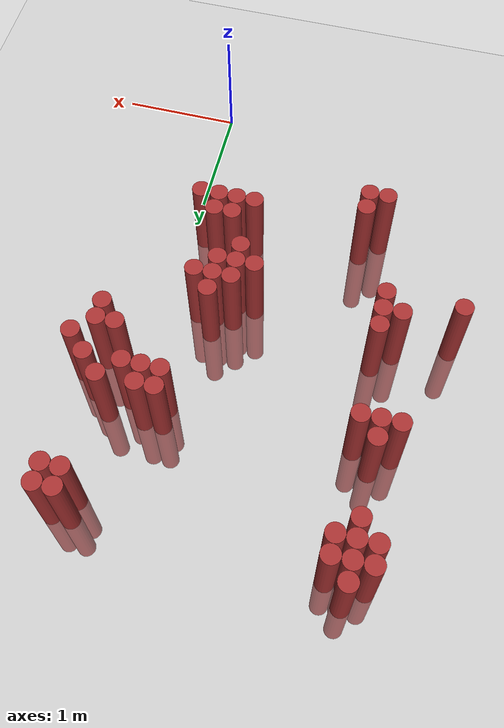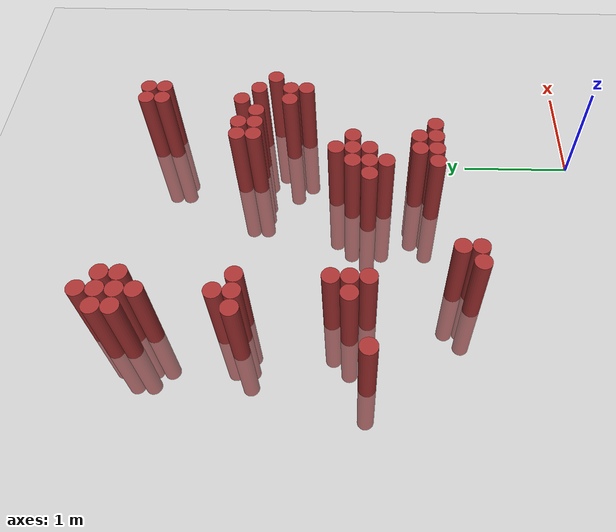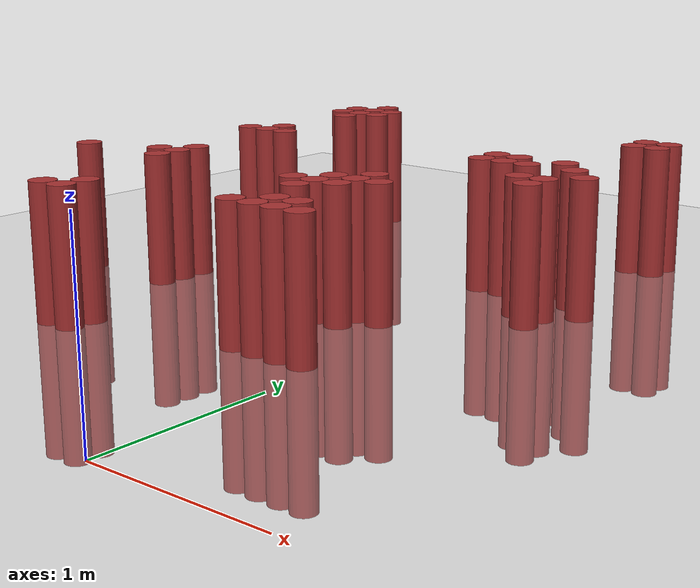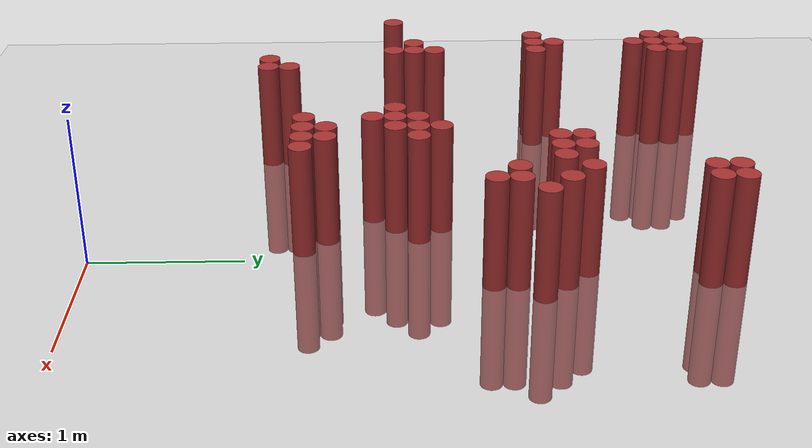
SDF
<sdf version="1.6">
 <world name="default">
  <model name="ground_plane">
   <static>1</static>
   <link name="link">
    <collision name="collision">
     <geometry><plane><normal>0 0 1</normal><size>100 100</size></plane></geometry>
     <surface><friction><ode><mu>100</mu><mu2>50</mu2></ode></friction></surface>
    </collision>
    <visual name="visual">
     <cast_shadows>0</cast_shadows>
     <geometry><plane><normal>0 0 1</normal><size>100 100</size></plane></geometry>
     <material>
      <script><uri>file://media/materials/scripts/gazebo.material</uri><name>Gazebo/Grey</name></script>
     </material>
    </visual>
   </link>
  </model>
  <model name="unit_cylinder_312">
   <static>1</static>
   <pose>-2.375000 1.975000 0.000000 0.000000 0.000000 0.000000</pose>
   <link name="link">
    <inertial>
     <mass>1</mass>
     <inertia><ixx>0.145833</ixx><ixy>0</ixy><ixz>0</ixz><iyy>0.145833</iyy><iyz>0</iyz><izz>0.125</izz></inertia>
    </inertial>
    <collision name="collision">
     <geometry><cylinder><radius>0.075000</radius><length>1.5</length></cylinder></geometry>
    </collision>
    <visual name="visual">
     <geometry><cylinder><radius>0.075000</radius><length>1.5</length></cylinder></geometry>
     <material>
      <ambient>0.648000 0.192000 0.192000 1</ambient>
      <diffuse>0.648000 0.192000 0.192000 1</diffuse>
     </material>
     <material>
      <script><name>Gazebo/Grey</name><uri>file://media/materials/scripts/gazebo.material</uri></script>
     </material>
    </visual>
   </link>
  </model>
  <model name="unit_cylinder_317">
   <static>1</static>
   <pose>-2.075000 3.025000 0.000000 0.000000 0.000000 0.000000</pose>
   <link name="link">
    <inertial>
     <mass>1</mass>
     <inertia><ixx>0.145833</ixx><ixy>0</ixy><ixz>0</ixz><iyy>0.145833</iyy><iyz>0</iyz><izz>0.125</izz></inertia>
    </inertial>
    <collision name="collision">
     <geometry><cylinder><radius>0.075000</radius><length>1.5</length></cylinder></geometry>
    </collision>
    <visual name="visual">
     <geometry><cylinder><radius>0.075000</radius><length>1.5</length></cylinder></geometry>
     <material>
      <ambient>0.648000 0.192000 0.192000 1</ambient>
      <diffuse>0.648000 0.192000 0.192000 1</diffuse>
     </material>
     <material>
      <script><name>Gazebo/Grey</name><uri>file://media/materials/scripts/gazebo.material</uri></script>
     </material>
    </visual>
   </link>
  </model>
  <model name="unit_cylinder_318">
   <static>1</static>
   <pose>-2.075000 3.925000 0.000000 0.000000 0.000000 0.000000</pose>
   <link name="link">
    <inertial>
     <mass>1</mass>
     <inertia><ixx>0.145833</ixx><ixy>0</ixy><ixz>0</ixz><iyy>0.145833</iyy><iyz>0</iyz><izz>0.125</izz></inertia>
    </inertial>
    <collision name="collision">
     <geometry><cylinder><radius>0.075000</radius><length>1.5</length></cylinder></geometry>
    </collision>
    <visual name="visual">
     <geometry><cylinder><radius>0.075000</radius><length>1.5</length></cylinder></geometry>
     <material>
      <ambient>0.648000 0.192000 0.192000 1</ambient>
      <diffuse>0.648000 0.192000 0.192000 1</diffuse>
     </material>
     <material>
      <script><name>Gazebo/Grey</name><uri>file://media/materials/scripts/gazebo.material</uri></script>
     </material>
    </visual>
   </link>
  </model>
  <model name="unit_cylinder_319">
   <static>1</static>
   <pose>-2.075000 4.075000 0.000000 0.000000 0.000000 0.000000</pose>
   <link name="link">
    <inertial>
     <mass>1</mass>
     <inertia><ixx>0.145833</ixx><ixy>0</ixy><ixz>0</ixz><iyy>0.145833</iyy><iyz>0</iyz><izz>0.125</izz></inertia>
    </inertial>
    <collision name="collision">
     <geometry><cylinder><radius>0.075000</radius><length>1.5</length></cylinder></geometry>
    </collision>
    <visual name="visual">
     <geometry><cylinder><radius>0.075000</radius><length>1.5</length></cylinder></geometry>
     <material>
      <ambient>0.648000 0.192000 0.192000 1</ambient>
      <diffuse>0.648000 0.192000 0.192000 1</diffuse>
     </material>
     <material>
      <script><name>Gazebo/Grey</name><uri>file://media/materials/scripts/gazebo.material</uri></script>
     </material>
    </visual>
   </link>
  </model>
  <model name="unit_cylinder_321">
   <static>1</static>
   <pose>-1.925000 2.125000 0.000000 0.000000 0.000000 0.000000</pose>
   <link name="link">
    <inertial>
     <mass>1</mass>
     <inertia><ixx>0.145833</ixx><ixy>0</ixy><ixz>0</ixz><iyy>0.145833</iyy><iyz>0</iyz><izz>0.125</izz></inertia>
    </inertial>
    <collision name="collision">
     <geometry><cylinder><radius>0.075000</radius><length>1.5</length></cylinder></geometry>
    </collision>
    <visual name="visual">
     <geometry><cylinder><radius>0.075000</radius><length>1.5</length></cylinder></geometry>
     <material>
      <ambient>0.648000 0.192000 0.192000 1</ambient>
      <diffuse>0.648000 0.192000 0.192000 1</diffuse>
     </material>
     <material>
      <script><name>Gazebo/Grey</name><uri>file://media/materials/scripts/gazebo.material</uri></script>
     </material>
    </visual>
   </link>
  </model>
  <model name="unit_cylinder_322">
   <static>1</static>
   <pose>-1.925000 3.025000 0.000000 0.000000 0.000000 0.000000</pose>
   <link name="link">
    <inertial>
     <mass>1</mass>
     <inertia><ixx>0.145833</ixx><ixy>0</ixy><ixz>0</ixz><iyy>0.145833</iyy><iyz>0</iyz><izz>0.125</izz></inertia>
    </inertial>
    <collision name="collision">
     <geometry><cylinder><radius>0.075000</radius><length>1.5</length></cylinder></geometry>
    </collision>
    <visual name="visual">
     <geometry><cylinder><radius>0.075000</radius><length>1.5</length></cylinder></geometry>
     <material>
      <ambient>0.648000 0.192000 0.192000 1</ambient>
      <diffuse>0.648000 0.192000 0.192000 1</diffuse>
     </material>
     <material>
      <script><name>Gazebo/Grey</name><uri>file://media/materials/scripts/gazebo.material</uri></script>
     </material>
    </visual>
   </link>
  </model>
  <model name="unit_cylinder_323">
   <static>1</static>
   <pose>-1.925000 3.175000 0.000000 0.000000 0.000000 0.000000</pose>
   <link name="link">
    <inertial>
     <mass>1</mass>
     <inertia><ixx>0.145833</ixx><ixy>0</ixy><ixz>0</ixz><iyy>0.145833</iyy><iyz>0</iyz><izz>0.125</izz></inertia>
    </inertial>
    <collision name="collision">
     <geometry><cylinder><radius>0.075000</radius><length>1.5</length></cylinder></geometry>
    </collision>
    <visual name="visual">
     <geometry><cylinder><radius>0.075000</radius><length>1.5</length></cylinder></geometry>
     <material>
      <ambient>0.648000 0.192000 0.192000 1</ambient>
      <diffuse>0.648000 0.192000 0.192000 1</diffuse>
     </material>
     <material>
      <script><name>Gazebo/Grey</name><uri>file://media/materials/scripts/gazebo.material</uri></script>
     </material>
    </visual>
   </link>
  </model>
  <model name="unit_cylinder_324">
   <static>1</static>
   <pose>-1.925000 3.775000 0.000000 0.000000 0.000000 0.000000</pose>
   <link name="link">
    <inertial>
     <mass>1</mass>
     <inertia><ixx>0.145833</ixx><ixy>0</ixy><ixz>0</ixz><iyy>0.145833</iyy><iyz>0</iyz><izz>0.125</izz></inertia>
    </inertial>
    <collision name="collision">
     <geometry><cylinder><radius>0.075000</radius><length>1.5</length></cylinder></geometry>
    </collision>
    <visual name="visual">
     <geometry><cylinder><radius>0.075000</radius><length>1.5</length></cylinder></geometry>
     <material>
      <ambient>0.648000 0.192000 0.192000 1</ambient>
      <diffuse>0.648000 0.192000 0.192000 1</diffuse>
     </material>
     <material>
      <script><name>Gazebo/Grey</name><uri>file://media/materials/scripts/gazebo.material</uri></script>
     </material>
    </visual>
   </link>
  </model>
  <model name="unit_cylinder_325">
   <static>1</static>
   <pose>-1.925000 3.925000 0.000000 0.000000 0.000000 0.000000</pose>
   <link name="link">
    <inertial>
     <mass>1</mass>
     <inertia><ixx>0.145833</ixx><ixy>0</ixy><ixz>0</ixz><iyy>0.145833</iyy><iyz>0</iyz><izz>0.125</izz></inertia>
    </inertial>
    <collision name="collision">
     <geometry><cylinder><radius>0.075000</radius><length>1.5</length></cylinder></geometry>
    </collision>
    <visual name="visual">
     <geometry><cylinder><radius>0.075000</radius><length>1.5</length></cylinder></geometry>
     <material>
      <ambient>0.648000 0.192000 0.192000 1</ambient>
      <diffuse>0.648000 0.192000 0.192000 1</diffuse>
     </material>
     <material>
      <script><name>Gazebo/Grey</name><uri>file://media/materials/scripts/gazebo.material</uri></script>
     </material>
    </visual>
   </link>
  </model>
  <model name="unit_cylinder_326">
   <static>1</static>
   <pose>-1.925000 4.075000 0.000000 0.000000 0.000000 0.000000</pose>
   <link name="link">
    <inertial>
     <mass>1</mass>
     <inertia><ixx>0.145833</ixx><ixy>0</ixy><ixz>0</ixz><iyy>0.145833</iyy><iyz>0</iyz><izz>0.125</izz></inertia>
    </inertial>
    <collision name="collision">
     <geometry><cylinder><radius>0.075000</radius><length>1.5</length></cylinder></geometry>
    </collision>
    <visual name="visual">
     <geometry><cylinder><radius>0.075000</radius><length>1.5</length></cylinder></geometry>
     <material>
      <ambient>0.648000 0.192000 0.192000 1</ambient>
      <diffuse>0.648000 0.192000 0.192000 1</diffuse>
     </material>
     <material>
      <script><name>Gazebo/Grey</name><uri>file://media/materials/scripts/gazebo.material</uri></script>
     </material>
    </visual>
   </link>
  </model>
  <model name="unit_cylinder_327">
   <static>1</static>
   <pose>-1.925000 4.225000 0.000000 0.000000 0.000000 0.000000</pose>
   <link name="link">
    <inertial>
     <mass>1</mass>
     <inertia><ixx>0.145833</ixx><ixy>0</ixy><ixz>0</ixz><iyy>0.145833</iyy><iyz>0</iyz><izz>0.125</izz></inertia>
    </inertial>
    <collision name="collision">
     <geometry><cylinder><radius>0.075000</radius><length>1.5</length></cylinder></geometry>
    </collision>
    <visual name="visual">
     <geometry><cylinder><radius>0.075000</radius><length>1.5</length></cylinder></geometry>
     <material>
      <ambient>0.648000 0.192000 0.192000 1</ambient>
      <diffuse>0.648000 0.192000 0.192000 1</diffuse>
     </material>
     <material>
      <script><name>Gazebo/Grey</name><uri>file://media/materials/scripts/gazebo.material</uri></script>
     </material>
    </visual>
   </link>
  </model>
  <model name="unit_cylinder_330">
   <static>1</static>
   <pose>-1.775000 1.975000 0.000000 0.000000 0.000000 0.000000</pose>
   <link name="link">
    <inertial>
     <mass>1</mass>
     <inertia><ixx>0.145833</ixx><ixy>0</ixy><ixz>0</ixz><iyy>0.145833</iyy><iyz>0</iyz><izz>0.125</izz></inertia>
    </inertial>
    <collision name="collision">
     <geometry><cylinder><radius>0.075000</radius><length>1.5</length></cylinder></geometry>
    </collision>
    <visual name="visual">
     <geometry><cylinder><radius>0.075000</radius><length>1.5</length></cylinder></geometry>
     <material>
      <ambient>0.648000 0.192000 0.192000 1</ambient>
      <diffuse>0.648000 0.192000 0.192000 1</diffuse>
     </material>
     <material>
      <script><name>Gazebo/Grey</name><uri>file://media/materials/scripts/gazebo.material</uri></script>
     </material>
    </visual>
   </link>
  </model>
  <model name="unit_cylinder_331">
   <static>1</static>
   <pose>-1.775000 2.125000 0.000000 0.000000 0.000000 0.000000</pose>
   <link name="link">
    <inertial>
     <mass>1</mass>
     <inertia><ixx>0.145833</ixx><ixy>0</ixy><ixz>0</ixz><iyy>0.145833</iyy><iyz>0</iyz><izz>0.125</izz></inertia>
    </inertial>
    <collision name="collision">
     <geometry><cylinder><radius>0.075000</radius><length>1.5</length></cylinder></geometry>
    </collision>
    <visual name="visual">
     <geometry><cylinder><radius>0.075000</radius><length>1.5</length></cylinder></geometry>
     <material>
      <ambient>0.648000 0.192000 0.192000 1</ambient>
      <diffuse>0.648000 0.192000 0.192000 1</diffuse>
     </material>
     <material>
      <script><name>Gazebo/Grey</name><uri>file://media/materials/scripts/gazebo.material</uri></script>
     </material>
    </visual>
   </link>
  </model>
  <model name="unit_cylinder_332">
   <static>1</static>
   <pose>-1.775000 2.275000 0.000000 0.000000 0.000000 0.000000</pose>
   <link name="link">
    <inertial>
     <mass>1</mass>
     <inertia><ixx>0.145833</ixx><ixy>0</ixy><ixz>0</ixz><iyy>0.145833</iyy><iyz>0</iyz><izz>0.125</izz></inertia>
    </inertial>
    <collision name="collision">
     <geometry><cylinder><radius>0.075000</radius><length>1.5</length></cylinder></geometry>
    </collision>
    <visual name="visual">
     <geometry><cylinder><radius>0.075000</radius><length>1.5</length></cylinder></geometry>
     <material>
      <ambient>0.648000 0.192000 0.192000 1</ambient>
      <diffuse>0.648000 0.192000 0.192000 1</diffuse>
     </material>
     <material>
      <script><name>Gazebo/Grey</name><uri>file://media/materials/scripts/gazebo.material</uri></script>
     </material>
    </visual>
   </link>
  </model>
  <model name="unit_cylinder_333">
   <static>1</static>
   <pose>-1.775000 3.025000 0.000000 0.000000 0.000000 0.000000</pose>
   <link name="link">
    <inertial>
     <mass>1</mass>
     <inertia><ixx>0.145833</ixx><ixy>0</ixy><ixz>0</ixz><iyy>0.145833</iyy><iyz>0</iyz><izz>0.125</izz></inertia>
    </inertial>
    <collision name="collision">
     <geometry><cylinder><radius>0.075000</radius><length>1.5</length></cylinder></geometry>
    </collision>
    <visual name="visual">
     <geometry><cylinder><radius>0.075000</radius><length>1.5</length></cylinder></geometry>
     <material>
      <ambient>0.648000 0.192000 0.192000 1</ambient>
      <diffuse>0.648000 0.192000 0.192000 1</diffuse>
     </material>
     <material>
      <script><name>Gazebo/Grey</name><uri>file://media/materials/scripts/gazebo.material</uri></script>
     </material>
    </visual>
   </link>
  </model>
  <model name="unit_cylinder_334">
   <static>1</static>
   <pose>-1.775000 3.925000 0.000000 0.000000 0.000000 0.000000</pose>
   <link name="link">
    <inertial>
     <mass>1</mass>
     <inertia><ixx>0.145833</ixx><ixy>0</ixy><ixz>0</ixz><iyy>0.145833</iyy><iyz>0</iyz><izz>0.125</izz></inertia>
    </inertial>
    <collision name="collision">
     <geometry><cylinder><radius>0.075000</radius><length>1.5</length></cylinder></geometry>
    </collision>
    <visual name="visual">
     <geometry><cylinder><radius>0.075000</radius><length>1.5</length></cylinder></geometry>
     <material>
      <ambient>0.648000 0.192000 0.192000 1</ambient>
      <diffuse>0.648000 0.192000 0.192000 1</diffuse>
     </material>
     <material>
      <script><name>Gazebo/Grey</name><uri>file://media/materials/scripts/gazebo.material</uri></script>
     </material>
    </visual>
   </link>
  </model>
  <model name="unit_cylinder_335">
   <static>1</static>
   <pose>-1.775000 4.075000 0.000000 0.000000 0.000000 0.000000</pose>
   <link name="link">
    <inertial>
     <mass>1</mass>
     <inertia><ixx>0.145833</ixx><ixy>0</ixy><ixz>0</ixz><iyy>0.145833</iyy><iyz>0</iyz><izz>0.125</izz></inertia>
    </inertial>
    <collision name="collision">
     <geometry><cylinder><radius>0.075000</radius><length>1.5</length></cylinder></geometry>
    </collision>
    <visual name="visual">
     <geometry><cylinder><radius>0.075000</radius><length>1.5</length></cylinder></geometry>
     <material>
      <ambient>0.648000 0.192000 0.192000 1</ambient>
      <diffuse>0.648000 0.192000 0.192000 1</diffuse>
     </material>
     <material>
      <script><name>Gazebo/Grey</name><uri>file://media/materials/scripts/gazebo.material</uri></script>
     </material>
    </visual>
   </link>
  </model>
  <model name="unit_cylinder_338">
   <static>1</static>
   <pose>-1.625000 1.075000 0.000000 0.000000 0.000000 0.000000</pose>
   <link name="link">
    <inertial>
     <mass>1</mass>
     <inertia><ixx>0.145833</ixx><ixy>0</ixy><ixz>0</ixz><iyy>0.145833</iyy><iyz>0</iyz><izz>0.125</izz></inertia>
    </inertial>
    <collision name="collision">
     <geometry><cylinder><radius>0.075000</radius><length>1.5</length></cylinder></geometry>
    </collision>
    <visual name="visual">
     <geometry><cylinder><radius>0.075000</radius><length>1.5</length></cylinder></geometry>
     <material>
      <ambient>0.648000 0.192000 0.192000 1</ambient>
      <diffuse>0.648000 0.192000 0.192000 1</diffuse>
     </material>
     <material>
      <script><name>Gazebo/Grey</name><uri>file://media/materials/scripts/gazebo.material</uri></script>
     </material>
    </visual>
   </link>
  </model>
  <model name="unit_cylinder_340">
   <static>1</static>
   <pose>-1.475000 1.075000 0.000000 0.000000 0.000000 0.000000</pose>
   <link name="link">
    <inertial>
     <mass>1</mass>
     <inertia><ixx>0.145833</ixx><ixy>0</ixy><ixz>0</ixz><iyy>0.145833</iyy><iyz>0</iyz><izz>0.125</izz></inertia>
    </inertial>
    <collision name="collision">
     <geometry><cylinder><radius>0.075000</radius><length>1.5</length></cylinder></geometry>
    </collision>
    <visual name="visual">
     <geometry><cylinder><radius>0.075000</radius><length>1.5</length></cylinder></geometry>
     <material>
      <ambient>0.648000 0.192000 0.192000 1</ambient>
      <diffuse>0.648000 0.192000 0.192000 1</diffuse>
     </material>
     <material>
      <script><name>Gazebo/Grey</name><uri>file://media/materials/scripts/gazebo.material</uri></script>
     </material>
    </visual>
   </link>
  </model>
  <model name="unit_cylinder_341">
   <static>1</static>
   <pose>-1.475000 1.225000 0.000000 0.000000 0.000000 0.000000</pose>
   <link name="link">
    <inertial>
     <mass>1</mass>
     <inertia><ixx>0.145833</ixx><ixy>0</ixy><ixz>0</ixz><iyy>0.145833</iyy><iyz>0</iyz><izz>0.125</izz></inertia>
    </inertial>
    <collision name="collision">
     <geometry><cylinder><radius>0.075000</radius><length>1.5</length></cylinder></geometry>
    </collision>
    <visual name="visual">
     <geometry><cylinder><radius>0.075000</radius><length>1.5</length></cylinder></geometry>
     <material>
      <ambient>0.648000 0.192000 0.192000 1</ambient>
      <diffuse>0.648000 0.192000 0.192000 1</diffuse>
     </material>
     <material>
      <script><name>Gazebo/Grey</name><uri>file://media/materials/scripts/gazebo.material</uri></script>
     </material>
    </visual>
   </link>
  </model>
  <model name="unit_cylinder_352">
   <static>1</static>
   <pose>-0.725000 1.975000 0.000000 0.000000 0.000000 0.000000</pose>
   <link name="link">
    <inertial>
     <mass>1</mass>
     <inertia><ixx>0.145833</ixx><ixy>0</ixy><ixz>0</ixz><iyy>0.145833</iyy><iyz>0</iyz><izz>0.125</izz></inertia>
    </inertial>
    <collision name="collision">
     <geometry><cylinder><radius>0.075000</radius><length>1.5</length></cylinder></geometry>
    </collision>
    <visual name="visual">
     <geometry><cylinder><radius>0.075000</radius><length>1.5</length></cylinder></geometry>
     <material>
      <ambient>0.648000 0.192000 0.192000 1</ambient>
      <diffuse>0.648000 0.192000 0.192000 1</diffuse>
     </material>
     <material>
      <script><name>Gazebo/Grey</name><uri>file://media/materials/scripts/gazebo.material</uri></script>
     </material>
    </visual>
   </link>
  </model>
  <model name="unit_cylinder_354">
   <static>1</static>
   <pose>-0.575000 1.375000 0.000000 0.000000 0.000000 0.000000</pose>
   <link name="link">
    <inertial>
     <mass>1</mass>
     <inertia><ixx>0.145833</ixx><ixy>0</ixy><ixz>0</ixz><iyy>0.145833</iyy><iyz>0</iyz><izz>0.125</izz></inertia>
    </inertial>
    <collision name="collision">
     <geometry><cylinder><radius>0.075000</radius><length>1.5</length></cylinder></geometry>
    </collision>
    <visual name="visual">
     <geometry><cylinder><radius>0.075000</radius><length>1.5</length></cylinder></geometry>
     <material>
      <ambient>0.648000 0.192000 0.192000 1</ambient>
      <diffuse>0.648000 0.192000 0.192000 1</diffuse>
     </material>
     <material>
      <script><name>Gazebo/Grey</name><uri>file://media/materials/scripts/gazebo.material</uri></script>
     </material>
    </visual>
   </link>
  </model>
  <model name="unit_cylinder_355">
   <static>1</static>
   <pose>-0.575000 1.825000 0.000000 0.000000 0.000000 0.000000</pose>
   <link name="link">
    <inertial>
     <mass>1</mass>
     <inertia><ixx>0.145833</ixx><ixy>0</ixy><ixz>0</ixz><iyy>0.145833</iyy><iyz>0</iyz><izz>0.125</izz></inertia>
    </inertial>
    <collision name="collision">
     <geometry><cylinder><radius>0.075000</radius><length>1.5</length></cylinder></geometry>
    </collision>
    <visual name="visual">
     <geometry><cylinder><radius>0.075000</radius><length>1.5</length></cylinder></geometry>
     <material>
      <ambient>0.648000 0.192000 0.192000 1</ambient>
      <diffuse>0.648000 0.192000 0.192000 1</diffuse>
     </material>
     <material>
      <script><name>Gazebo/Grey</name><uri>file://media/materials/scripts/gazebo.material</uri></script>
     </material>
    </visual>
   </link>
  </model>
  <model name="unit_cylinder_356">
   <static>1</static>
   <pose>-0.575000 1.975000 0.000000 0.000000 0.000000 0.000000</pose>
   <link name="link">
    <inertial>
     <mass>1</mass>
     <inertia><ixx>0.145833</ixx><ixy>0</ixy><ixz>0</ixz><iyy>0.145833</iyy><iyz>0</iyz><izz>0.125</izz></inertia>
    </inertial>
    <collision name="collision">
     <geometry><cylinder><radius>0.075000</radius><length>1.5</length></cylinder></geometry>
    </collision>
    <visual name="visual">
     <geometry><cylinder><radius>0.075000</radius><length>1.5</length></cylinder></geometry>
     <material>
      <ambient>0.648000 0.192000 0.192000 1</ambient>
      <diffuse>0.648000 0.192000 0.192000 1</diffuse>
     </material>
     <material>
      <script><name>Gazebo/Grey</name><uri>file://media/materials/scripts/gazebo.material</uri></script>
     </material>
    </visual>
   </link>
  </model>
  <model name="unit_cylinder_357">
   <static>1</static>
   <pose>-0.575000 2.125000 0.000000 0.000000 0.000000 0.000000</pose>
   <link name="link">
    <inertial>
     <mass>1</mass>
     <inertia><ixx>0.145833</ixx><ixy>0</ixy><ixz>0</ixz><iyy>0.145833</iyy><iyz>0</iyz><izz>0.125</izz></inertia>
    </inertial>
    <collision name="collision">
     <geometry><cylinder><radius>0.075000</radius><length>1.5</length></cylinder></geometry>
    </collision>
    <visual name="visual">
     <geometry><cylinder><radius>0.075000</radius><length>1.5</length></cylinder></geometry>
     <material>
      <ambient>0.648000 0.192000 0.192000 1</ambient>
      <diffuse>0.648000 0.192000 0.192000 1</diffuse>
     </material>
     <material>
      <script><name>Gazebo/Grey</name><uri>file://media/materials/scripts/gazebo.material</uri></script>
     </material>
    </visual>
   </link>
  </model>
  <model name="unit_cylinder_358">
   <static>1</static>
   <pose>-0.425000 1.375000 0.000000 0.000000 0.000000 0.000000</pose>
   <link name="link">
    <inertial>
     <mass>1</mass>
     <inertia><ixx>0.145833</ixx><ixy>0</ixy><ixz>0</ixz><iyy>0.145833</iyy><iyz>0</iyz><izz>0.125</izz></inertia>
    </inertial>
    <collision name="collision">
     <geometry><cylinder><radius>0.075000</radius><length>1.5</length></cylinder></geometry>
    </collision>
    <visual name="visual">
     <geometry><cylinder><radius>0.075000</radius><length>1.5</length></cylinder></geometry>
     <material>
      <ambient>0.648000 0.192000 0.192000 1</ambient>
      <diffuse>0.648000 0.192000 0.192000 1</diffuse>
     </material>
     <material>
      <script><name>Gazebo/Grey</name><uri>file://media/materials/scripts/gazebo.material</uri></script>
     </material>
    </visual>
   </link>
  </model>
  <model name="unit_cylinder_359">
   <static>1</static>
   <pose>-0.425000 1.525000 0.000000 0.000000 0.000000 0.000000</pose>
   <link name="link">
    <inertial>
     <mass>1</mass>
     <inertia><ixx>0.145833</ixx><ixy>0</ixy><ixz>0</ixz><iyy>0.145833</iyy><iyz>0</iyz><izz>0.125</izz></inertia>
    </inertial>
    <collision name="collision">
     <geometry><cylinder><radius>0.075000</radius><length>1.5</length></cylinder></geometry>
    </collision>
    <visual name="visual">
     <geometry><cylinder><radius>0.075000</radius><length>1.5</length></cylinder></geometry>
     <material>
      <ambient>0.648000 0.192000 0.192000 1</ambient>
      <diffuse>0.648000 0.192000 0.192000 1</diffuse>
     </material>
     <material>
      <script><name>Gazebo/Grey</name><uri>file://media/materials/scripts/gazebo.material</uri></script>
     </material>
    </visual>
   </link>
  </model>
  <model name="unit_cylinder_360">
   <static>1</static>
   <pose>-0.425000 1.975000 0.000000 0.000000 0.000000 0.000000</pose>
   <link name="link">
    <inertial>
     <mass>1</mass>
     <inertia><ixx>0.145833</ixx><ixy>0</ixy><ixz>0</ixz><iyy>0.145833</iyy><iyz>0</iyz><izz>0.125</izz></inertia>
    </inertial>
    <collision name="collision">
     <geometry><cylinder><radius>0.075000</radius><length>1.5</length></cylinder></geometry>
    </collision>
    <visual name="visual">
     <geometry><cylinder><radius>0.075000</radius><length>1.5</length></cylinder></geometry>
     <material>
      <ambient>0.648000 0.192000 0.192000 1</ambient>
      <diffuse>0.648000 0.192000 0.192000 1</diffuse>
     </material>
     <material>
      <script><name>Gazebo/Grey</name><uri>file://media/materials/scripts/gazebo.material</uri></script>
     </material>
    </visual>
   </link>
  </model>
  <model name="unit_cylinder_361">
   <static>1</static>
   <pose>-0.425000 2.125000 0.000000 0.000000 0.000000 0.000000</pose>
   <link name="link">
    <inertial>
     <mass>1</mass>
     <inertia><ixx>0.145833</ixx><ixy>0</ixy><ixz>0</ixz><iyy>0.145833</iyy><iyz>0</iyz><izz>0.125</izz></inertia>
    </inertial>
    <collision name="collision">
     <geometry><cylinder><radius>0.075000</radius><length>1.5</length></cylinder></geometry>
    </collision>
    <visual name="visual">
     <geometry><cylinder><radius>0.075000</radius><length>1.5</length></cylinder></geometry>
     <material>
      <ambient>0.648000 0.192000 0.192000 1</ambient>
      <diffuse>0.648000 0.192000 0.192000 1</diffuse>
     </material>
     <material>
      <script><name>Gazebo/Grey</name><uri>file://media/materials/scripts/gazebo.material</uri></script>
     </material>
    </visual>
   </link>
  </model>
  <model name="unit_cylinder_362">
   <static>1</static>
   <pose>-0.425000 2.275000 0.000000 0.000000 0.000000 0.000000</pose>
   <link name="link">
    <inertial>
     <mass>1</mass>
     <inertia><ixx>0.145833</ixx><ixy>0</ixy><ixz>0</ixz><iyy>0.145833</iyy><iyz>0</iyz><izz>0.125</izz></inertia>
    </inertial>
    <collision name="collision">
     <geometry><cylinder><radius>0.075000</radius><length>1.5</length></cylinder></geometry>
    </collision>
    <visual name="visual">
     <geometry><cylinder><radius>0.075000</radius><length>1.5</length></cylinder></geometry>
     <material>
      <ambient>0.648000 0.192000 0.192000 1</ambient>
      <diffuse>0.648000 0.192000 0.192000 1</diffuse>
     </material>
     <material>
      <script><name>Gazebo/Grey</name><uri>file://media/materials/scripts/gazebo.material</uri></script>
     </material>
    </visual>
   </link>
  </model>
  <model name="unit_cylinder_363">
   <static>1</static>
   <pose>-0.275000 1.375000 0.000000 0.000000 0.000000 0.000000</pose>
   <link name="link">
    <inertial>
     <mass>1</mass>
     <inertia><ixx>0.145833</ixx><ixy>0</ixy><ixz>0</ixz><iyy>0.145833</iyy><iyz>0</iyz><izz>0.125</izz></inertia>
    </inertial>
    <collision name="collision">
     <geometry><cylinder><radius>0.075000</radius><length>1.5</length></cylinder></geometry>
    </collision>
    <visual name="visual">
     <geometry><cylinder><radius>0.075000</radius><length>1.5</length></cylinder></geometry>
     <material>
      <ambient>0.648000 0.192000 0.192000 1</ambient>
      <diffuse>0.648000 0.192000 0.192000 1</diffuse>
     </material>
     <material>
      <script><name>Gazebo/Grey</name><uri>file://media/materials/scripts/gazebo.material</uri></script>
     </material>
    </visual>
   </link>
  </model>
  <model name="unit_cylinder_364">
   <static>1</static>
   <pose>-0.275000 1.525000 0.000000 0.000000 0.000000 0.000000</pose>
   <link name="link">
    <inertial>
     <mass>1</mass>
     <inertia><ixx>0.145833</ixx><ixy>0</ixy><ixz>0</ixz><iyy>0.145833</iyy><iyz>0</iyz><izz>0.125</izz></inertia>
    </inertial>
    <collision name="collision">
     <geometry><cylinder><radius>0.075000</radius><length>1.5</length></cylinder></geometry>
    </collision>
    <visual name="visual">
     <geometry><cylinder><radius>0.075000</radius><length>1.5</length></cylinder></geometry>
     <material>
      <ambient>0.648000 0.192000 0.192000 1</ambient>
      <diffuse>0.648000 0.192000 0.192000 1</diffuse>
     </material>
     <material>
      <script><name>Gazebo/Grey</name><uri>file://media/materials/scripts/gazebo.material</uri></script>
     </material>
    </visual>
   </link>
  </model>
  <model name="unit_cylinder_365">
   <static>1</static>
   <pose>-0.275000 2.125000 0.000000 0.000000 0.000000 0.000000</pose>
   <link name="link">
    <inertial>
     <mass>1</mass>
     <inertia><ixx>0.145833</ixx><ixy>0</ixy><ixz>0</ixz><iyy>0.145833</iyy><iyz>0</iyz><izz>0.125</izz></inertia>
    </inertial>
    <collision name="collision">
     <geometry><cylinder><radius>0.075000</radius><length>1.5</length></cylinder></geometry>
    </collision>
    <visual name="visual">
     <geometry><cylinder><radius>0.075000</radius><length>1.5</length></cylinder></geometry>
     <material>
      <ambient>0.648000 0.192000 0.192000 1</ambient>
      <diffuse>0.648000 0.192000 0.192000 1</diffuse>
     </material>
     <material>
      <script><name>Gazebo/Grey</name><uri>file://media/materials/scripts/gazebo.material</uri></script>
     </material>
    </visual>
   </link>
  </model>
  <model name="unit_cylinder_366">
   <static>1</static>
   <pose>-0.275000 3.025000 0.000000 0.000000 0.000000 0.000000</pose>
   <link name="link">
    <inertial>
     <mass>1</mass>
     <inertia><ixx>0.145833</ixx><ixy>0</ixy><ixz>0</ixz><iyy>0.145833</iyy><iyz>0</iyz><izz>0.125</izz></inertia>
    </inertial>
    <collision name="collision">
     <geometry><cylinder><radius>0.075000</radius><length>1.5</length></cylinder></geometry>
    </collision>
    <visual name="visual">
     <geometry><cylinder><radius>0.075000</radius><length>1.5</length></cylinder></geometry>
     <material>
      <ambient>0.648000 0.192000 0.192000 1</ambient>
      <diffuse>0.648000 0.192000 0.192000 1</diffuse>
     </material>
     <material>
      <script><name>Gazebo/Grey</name><uri>file://media/materials/scripts/gazebo.material</uri></script>
     </material>
    </visual>
   </link>
  </model>
  <model name="unit_cylinder_367">
   <static>1</static>
   <pose>-0.275000 3.175000 0.000000 0.000000 0.000000 0.000000</pose>
   <link name="link">
    <inertial>
     <mass>1</mass>
     <inertia><ixx>0.145833</ixx><ixy>0</ixy><ixz>0</ixz><iyy>0.145833</iyy><iyz>0</iyz><izz>0.125</izz></inertia>
    </inertial>
    <collision name="collision">
     <geometry><cylinder><radius>0.075000</radius><length>1.5</length></cylinder></geometry>
    </collision>
    <visual name="visual">
     <geometry><cylinder><radius>0.075000</radius><length>1.5</length></cylinder></geometry>
     <material>
      <ambient>0.648000 0.192000 0.192000 1</ambient>
      <diffuse>0.648000 0.192000 0.192000 1</diffuse>
     </material>
     <material>
      <script><name>Gazebo/Grey</name><uri>file://media/materials/scripts/gazebo.material</uri></script>
     </material>
    </visual>
   </link>
  </model>
  <model name="unit_cylinder_368">
   <static>1</static>
   <pose>-0.125000 1.375000 0.000000 0.000000 0.000000 0.000000</pose>
   <link name="link">
    <inertial>
     <mass>1</mass>
     <inertia><ixx>0.145833</ixx><ixy>0</ixy><ixz>0</ixz><iyy>0.145833</iyy><iyz>0</iyz><izz>0.125</izz></inertia>
    </inertial>
    <collision name="collision">
     <geometry><cylinder><radius>0.075000</radius><length>1.5</length></cylinder></geometry>
    </collision>
    <visual name="visual">
     <geometry><cylinder><radius>0.075000</radius><length>1.5</length></cylinder></geometry>
     <material>
      <ambient>0.648000 0.192000 0.192000 1</ambient>
      <diffuse>0.648000 0.192000 0.192000 1</diffuse>
     </material>
     <material>
      <script><name>Gazebo/Grey</name><uri>file://media/materials/scripts/gazebo.material</uri></script>
     </material>
    </visual>
   </link>
  </model>
  <model name="unit_cylinder_369">
   <static>1</static>
   <pose>-0.125000 3.025000 0.000000 0.000000 0.000000 0.000000</pose>
   <link name="link">
    <inertial>
     <mass>1</mass>
     <inertia><ixx>0.145833</ixx><ixy>0</ixy><ixz>0</ixz><iyy>0.145833</iyy><iyz>0</iyz><izz>0.125</izz></inertia>
    </inertial>
    <collision name="collision">
     <geometry><cylinder><radius>0.075000</radius><length>1.5</length></cylinder></geometry>
    </collision>
    <visual name="visual">
     <geometry><cylinder><radius>0.075000</radius><length>1.5</length></cylinder></geometry>
     <material>
      <ambient>0.648000 0.192000 0.192000 1</ambient>
      <diffuse>0.648000 0.192000 0.192000 1</diffuse>
     </material>
     <material>
      <script><name>Gazebo/Grey</name><uri>file://media/materials/scripts/gazebo.material</uri></script>
     </material>
    </visual>
   </link>
  </model>
  <model name="unit_cylinder_370">
   <static>1</static>
   <pose>-0.125000 3.175000 0.000000 0.000000 0.000000 0.000000</pose>
   <link name="link">
    <inertial>
     <mass>1</mass>
     <inertia><ixx>0.145833</ixx><ixy>0</ixy><ixz>0</ixz><iyy>0.145833</iyy><iyz>0</iyz><izz>0.125</izz></inertia>
    </inertial>
    <collision name="collision">
     <geometry><cylinder><radius>0.075000</radius><length>1.5</length></cylinder></geometry>
    </collision>
    <visual name="visual">
     <geometry><cylinder><radius>0.075000</radius><length>1.5</length></cylinder></geometry>
     <material>
      <ambient>0.648000 0.192000 0.192000 1</ambient>
      <diffuse>0.648000 0.192000 0.192000 1</diffuse>
     </material>
     <material>
      <script><name>Gazebo/Grey</name><uri>file://media/materials/scripts/gazebo.material</uri></script>
     </material>
    </visual>
   </link>
  </model>
  <model name="unit_cylinder_371">
   <static>1</static>
   <pose>0.025000 3.025000 0.000000 0.000000 0.000000 0.000000</pose>
   <link name="link">
    <inertial>
     <mass>1</mass>
     <inertia><ixx>0.145833</ixx><ixy>0</ixy><ixz>0</ixz><iyy>0.145833</iyy><iyz>0</iyz><izz>0.125</izz></inertia>
    </inertial>
    <collision name="collision">
     <geometry><cylinder><radius>0.075000</radius><length>1.5</length></cylinder></geometry>
    </collision>
    <visual name="visual">
     <geometry><cylinder><radius>0.075000</radius><length>1.5</length></cylinder></geometry>
     <material>
      <ambient>0.648000 0.192000 0.192000 1</ambient>
      <diffuse>0.648000 0.192000 0.192000 1</diffuse>
     </material>
     <material>
      <script><name>Gazebo/Grey</name><uri>file://media/materials/scripts/gazebo.material</uri></script>
     </material>
    </visual>
   </link>
  </model>
  <model name="unit_cylinder_372">
   <static>1</static>
   <pose>0.175000 2.725000 0.000000 0.000000 0.000000 0.000000</pose>
   <link name="link">
    <inertial>
     <mass>1</mass>
     <inertia><ixx>0.145833</ixx><ixy>0</ixy><ixz>0</ixz><iyy>0.145833</iyy><iyz>0</iyz><izz>0.125</izz></inertia>
    </inertial>
    <collision name="collision">
     <geometry><cylinder><radius>0.075000</radius><length>1.5</length></cylinder></geometry>
    </collision>
    <visual name="visual">
     <geometry><cylinder><radius>0.075000</radius><length>1.5</length></cylinder></geometry>
     <material>
      <ambient>0.648000 0.192000 0.192000 1</ambient>
      <diffuse>0.648000 0.192000 0.192000 1</diffuse>
     </material>
     <material>
      <script><name>Gazebo/Grey</name><uri>file://media/materials/scripts/gazebo.material</uri></script>
     </material>
    </visual>
   </link>
  </model>
  <model name="unit_cylinder_373">
   <static>1</static>
   <pose>0.175000 3.175000 0.000000 0.000000 0.000000 0.000000</pose>
   <link name="link">
    <inertial>
     <mass>1</mass>
     <inertia><ixx>0.145833</ixx><ixy>0</ixy><ixz>0</ixz><iyy>0.145833</iyy><iyz>0</iyz><izz>0.125</izz></inertia>
    </inertial>
    <collision name="collision">
     <geometry><cylinder><radius>0.075000</radius><length>1.5</length></cylinder></geometry>
    </collision>
    <visual name="visual">
     <geometry><cylinder><radius>0.075000</radius><length>1.5</length></cylinder></geometry>
     <material>
      <ambient>0.648000 0.192000 0.192000 1</ambient>
      <diffuse>0.648000 0.192000 0.192000 1</diffuse>
     </material>
     <material>
      <script><name>Gazebo/Grey</name><uri>file://media/materials/scripts/gazebo.material</uri></script>
     </material>
    </visual>
   </link>
  </model>
  <model name="unit_cylinder_374">
   <static>1</static>
   <pose>0.175000 3.925000 0.000000 0.000000 0.000000 0.000000</pose>
   <link name="link">
    <inertial>
     <mass>1</mass>
     <inertia><ixx>0.145833</ixx><ixy>0</ixy><ixz>0</ixz><iyy>0.145833</iyy><iyz>0</iyz><izz>0.125</izz></inertia>
    </inertial>
    <collision name="collision">
     <geometry><cylinder><radius>0.075000</radius><length>1.5</length></cylinder></geometry>
    </collision>
    <visual name="visual">
     <geometry><cylinder><radius>0.075000</radius><length>1.5</length></cylinder></geometry>
     <material>
      <ambient>0.648000 0.192000 0.192000 1</ambient>
      <diffuse>0.648000 0.192000 0.192000 1</diffuse>
     </material>
     <material>
      <script><name>Gazebo/Grey</name><uri>file://media/materials/scripts/gazebo.material</uri></script>
     </material>
    </visual>
   </link>
  </model>
  <model name="unit_cylinder_375">
   <static>1</static>
   <pose>0.175000 4.075000 0.000000 0.000000 0.000000 0.000000</pose>
   <link name="link">
    <inertial>
     <mass>1</mass>
     <inertia><ixx>0.145833</ixx><ixy>0</ixy><ixz>0</ixz><iyy>0.145833</iyy><iyz>0</iyz><izz>0.125</izz></inertia>
    </inertial>
    <collision name="collision">
     <geometry><cylinder><radius>0.075000</radius><length>1.5</length></cylinder></geometry>
    </collision>
    <visual name="visual">
     <geometry><cylinder><radius>0.075000</radius><length>1.5</length></cylinder></geometry>
     <material>
      <ambient>0.648000 0.192000 0.192000 1</ambient>
      <diffuse>0.648000 0.192000 0.192000 1</diffuse>
     </material>
     <material>
      <script><name>Gazebo/Grey</name><uri>file://media/materials/scripts/gazebo.material</uri></script>
     </material>
    </visual>
   </link>
  </model>
  <model name="unit_cylinder_376">
   <static>1</static>
   <pose>0.325000 2.575000 0.000000 0.000000 0.000000 0.000000</pose>
   <link name="link">
    <inertial>
     <mass>1</mass>
     <inertia><ixx>0.145833</ixx><ixy>0</ixy><ixz>0</ixz><iyy>0.145833</iyy><iyz>0</iyz><izz>0.125</izz></inertia>
    </inertial>
    <collision name="collision">
     <geometry><cylinder><radius>0.075000</radius><length>1.5</length></cylinder></geometry>
    </collision>
    <visual name="visual">
     <geometry><cylinder><radius>0.075000</radius><length>1.5</length></cylinder></geometry>
     <material>
      <ambient>0.648000 0.192000 0.192000 1</ambient>
      <diffuse>0.648000 0.192000 0.192000 1</diffuse>
     </material>
     <material>
      <script><name>Gazebo/Grey</name><uri>file://media/materials/scripts/gazebo.material</uri></script>
     </material>
    </visual>
   </link>
  </model>
  <model name="unit_cylinder_377">
   <static>1</static>
   <pose>0.325000 2.725000 0.000000 0.000000 0.000000 0.000000</pose>
   <link name="link">
    <inertial>
     <mass>1</mass>
     <inertia><ixx>0.145833</ixx><ixy>0</ixy><ixz>0</ixz><iyy>0.145833</iyy><iyz>0</iyz><izz>0.125</izz></inertia>
    </inertial>
    <collision name="collision">
     <geometry><cylinder><radius>0.075000</radius><length>1.5</length></cylinder></geometry>
    </collision>
    <visual name="visual">
     <geometry><cylinder><radius>0.075000</radius><length>1.5</length></cylinder></geometry>
     <material>
      <ambient>0.648000 0.192000 0.192000 1</ambient>
      <diffuse>0.648000 0.192000 0.192000 1</diffuse>
     </material>
     <material>
      <script><name>Gazebo/Grey</name><uri>file://media/materials/scripts/gazebo.material</uri></script>
     </material>
    </visual>
   </link>
  </model>
  <model name="unit_cylinder_378">
   <static>1</static>
   <pose>0.325000 3.025000 0.000000 0.000000 0.000000 0.000000</pose>
   <link name="link">
    <inertial>
     <mass>1</mass>
     <inertia><ixx>0.145833</ixx><ixy>0</ixy><ixz>0</ixz><iyy>0.145833</iyy><iyz>0</iyz><izz>0.125</izz></inertia>
    </inertial>
    <collision name="collision">
     <geometry><cylinder><radius>0.075000</radius><length>1.5</length></cylinder></geometry>
    </collision>
    <visual name="visual">
     <geometry><cylinder><radius>0.075000</radius><length>1.5</length></cylinder></geometry>
     <material>
      <ambient>0.648000 0.192000 0.192000 1</ambient>
      <diffuse>0.648000 0.192000 0.192000 1</diffuse>
     </material>
     <material>
      <script><name>Gazebo/Grey</name><uri>file://media/materials/scripts/gazebo.material</uri></script>
     </material>
    </visual>
   </link>
  </model>
  <model name="unit_cylinder_379">
   <static>1</static>
   <pose>0.325000 3.925000 0.000000 0.000000 0.000000 0.000000</pose>
   <link name="link">
    <inertial>
     <mass>1</mass>
     <inertia><ixx>0.145833</ixx><ixy>0</ixy><ixz>0</ixz><iyy>0.145833</iyy><iyz>0</iyz><izz>0.125</izz></inertia>
    </inertial>
    <collision name="collision">
     <geometry><cylinder><radius>0.075000</radius><length>1.5</length></cylinder></geometry>
    </collision>
    <visual name="visual">
     <geometry><cylinder><radius>0.075000</radius><length>1.5</length></cylinder></geometry>
     <material>
      <ambient>0.648000 0.192000 0.192000 1</ambient>
      <diffuse>0.648000 0.192000 0.192000 1</diffuse>
     </material>
     <material>
      <script><name>Gazebo/Grey</name><uri>file://media/materials/scripts/gazebo.material</uri></script>
     </material>
    </visual>
   </link>
  </model>
  <model name="unit_cylinder_380">
   <static>1</static>
   <pose>0.325000 4.075000 0.000000 0.000000 0.000000 0.000000</pose>
   <link name="link">
    <inertial>
     <mass>1</mass>
     <inertia><ixx>0.145833</ixx><ixy>0</ixy><ixz>0</ixz><iyy>0.145833</iyy><iyz>0</iyz><izz>0.125</izz></inertia>
    </inertial>
    <collision name="collision">
     <geometry><cylinder><radius>0.075000</radius><length>1.5</length></cylinder></geometry>
    </collision>
    <visual name="visual">
     <geometry><cylinder><radius>0.075000</radius><length>1.5</length></cylinder></geometry>
     <material>
      <ambient>0.648000 0.192000 0.192000 1</ambient>
      <diffuse>0.648000 0.192000 0.192000 1</diffuse>
     </material>
     <material>
      <script><name>Gazebo/Grey</name><uri>file://media/materials/scripts/gazebo.material</uri></script>
     </material>
    </visual>
   </link>
  </model>
  <model name="unit_cylinder_381">
   <static>1</static>
   <pose>0.475000 2.875000 0.000000 0.000000 0.000000 0.000000</pose>
   <link name="link">
    <inertial>
     <mass>1</mass>
     <inertia><ixx>0.145833</ixx><ixy>0</ixy><ixz>0</ixz><iyy>0.145833</iyy><iyz>0</iyz><izz>0.125</izz></inertia>
    </inertial>
    <collision name="collision">
     <geometry><cylinder><radius>0.075000</radius><length>1.5</length></cylinder></geometry>
    </collision>
    <visual name="visual">
     <geometry><cylinder><radius>0.075000</radius><length>1.5</length></cylinder></geometry>
     <material>
      <ambient>0.648000 0.192000 0.192000 1</ambient>
      <diffuse>0.648000 0.192000 0.192000 1</diffuse>
     </material>
     <material>
      <script><name>Gazebo/Grey</name><uri>file://media/materials/scripts/gazebo.material</uri></script>
     </material>
    </visual>
   </link>
  </model>
 </world>
</sdf>
